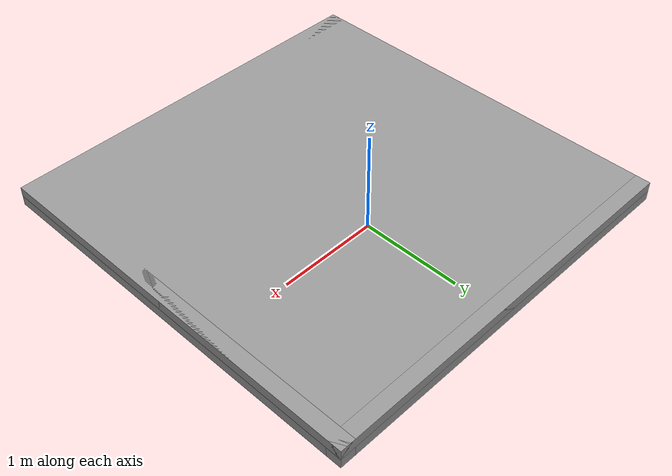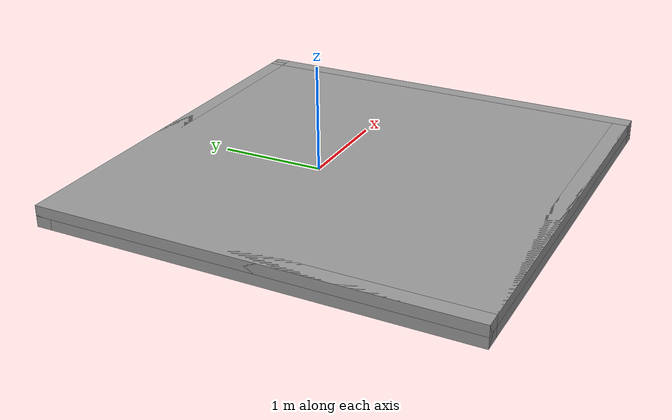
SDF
<?xml version='1.0'?>
<sdf version='1.6'>
  <model name='base01'>
    <pose frame=''>-0.035 -0.425 0 0 -0 0</pose>
    <link name='Floor_1'>
      <collision name='Floor_1_Collision'>
        <geometry>
          <box>
            <size>4 4 0.1</size>
          </box>
        </geometry>
        <pose frame=''>0 0 0.05 0 -0 0</pose>
      </collision>
      <visual name='Floor_1_Visual'>
        <pose frame=''>0 0 0.05 0 -0 0</pose>
        <geometry>
          <box>
            <size>4 4 0.1</size>
          </box>
        </geometry>
        <material>
          <script>
            <uri>file://media/materials/scripts/gazebo.material</uri>
            <name>Gazebo/Grey</name>
          </script>
          <ambient>1 1 1 1</ambient>
        </material>
      </visual>
      <pose frame=''>0 0 0.1 0 -0 0</pose>
    </link>
    <link name='Wall_10'>
      <collision name='Wall_10_Collision'>
        <geometry>
          <box>
            <size>4 0.15 0.1</size>
          </box>
        </geometry>
        <pose frame=''>0 0 0.05 0 -0 0</pose>
      </collision>
      <visual name='Wall_10_Visual'>
        <pose frame=''>0 0 0.05 0 -0 0</pose>
        <geometry>
          <box>
            <size>4 0.15 0.1</size>
          </box>
        </geometry>
        <material>
          <script>
            <uri>file://media/materials/scripts/gazebo.material</uri>
            <name>Gazebo/Grey</name>
          </script>
          <ambient>1 1 1 1</ambient>
        </material>
      </visual>
      <pose frame=''>-1.925 0 0 0 0 -1.5708</pose>
    </link>
    <link name='Wall_16'>
      <collision name='Wall_16_Collision'>
        <geometry>
          <box>
            <size>4 0.15 0.1</size>
          </box>
        </geometry>
        <pose frame=''>0 0 0.05 0 -0 0</pose>
      </collision>
      <visual name='Wall_16_Visual'>
        <pose frame=''>0 0 0.05 0 -0 0</pose>
        <geometry>
          <box>
            <size>4 0.15 0.1</size>
          </box>
        </geometry>
        <material>
          <script>
            <uri>file://media/materials/scripts/gazebo.material</uri>
            <name>Gazebo/Grey</name>
          </script>
          <ambient>1 1 1 1</ambient>
        </material>
      </visual>
      <pose frame=''>0 -1.925 0.1 0 -0 0</pose>
    </link>
    <link name='Wall_17'>
      <collision name='Wall_17_Collision'>
        <geometry>
          <box>
            <size>4 0.15 0.1</size>
          </box>
        </geometry>
        <pose frame=''>0 0 0.05 0 -0 0</pose>
      </collision>
      <visual name='Wall_17_Visual'>
        <pose frame=''>0 0 0.05 0 -0 0</pose>
        <geometry>
          <box>
            <size>4 0.15 0.1</size>
          </box>
        </geometry>
        <material>
          <script>
            <uri>file://media/materials/scripts/gazebo.material</uri>
            <name>Gazebo/Grey</name>
          </script>
          <ambient>1 1 1 1</ambient>
        </material>
      </visual>
      <pose frame=''>1.925 0 0.1 0 -0 1.5708</pose>
    </link>
    <link name='Wall_18'>
      <collision name='Wall_18_Collision'>
        <geometry>
          <box>
            <size>4 0.15 0.1</size>
          </box>
        </geometry>
        <pose frame=''>0 0 0.05 0 -0 0</pose>
      </collision>
      <visual name='Wall_18_Visual'>
        <pose frame=''>0 0 0.05 0 -0 0</pose>
        <geometry>
          <box>
            <size>4 0.15 0.1</size>
          </box>
        </geometry>
        <material>
          <script>
            <uri>file://media/materials/scripts/gazebo.material</uri>
            <name>Gazebo/Grey</name>
          </script>
          <ambient>1 1 1 1</ambient>
        </material>
      </visual>
      <pose frame=''>0 1.925 0.1 0 -0 3.14159</pose>
    </link>
    <link name='Wall_19'>
      <collision name='Wall_19_Collision'>
        <geometry>
          <box>
            <size>4 0.15 0.1</size>
          </box>
        </geometry>
        <pose frame=''>0 0 0.05 0 -0 0</pose>
      </collision>
      <visual name='Wall_19_Visual'>
        <pose frame=''>0 0 0.05 0 -0 0</pose>
        <geometry>
          <box>
            <size>4 0.15 0.1</size>
          </box>
        </geometry>
        <material>
          <script>
            <uri>file://media/materials/scripts/gazebo.material</uri>
            <name>Gazebo/Grey</name>
          </script>
          <ambient>1 1 1 1</ambient>
        </material>
      </visual>
      <pose frame=''>-1.925 0 0.1 0 0 -1.5708</pose>
    </link>
    <link name='Wall_6'>
      <collision name='Wall_6_Collision'>
        <geometry>
          <box>
            <size>4 0.15 0.1</size>
          </box>
        </geometry>
        <pose frame=''>0 0 0.05 0 -0 0</pose>
      </collision>
      <visual name='Wall_6_Visual'>
        <pose frame=''>0 0 0.05 0 -0 0</pose>
        <geometry>
          <box>
            <size>4 0.15 0.1</size>
          </box>
        </geometry>
        <material>
          <script>
            <uri>file://media/materials/scripts/gazebo.material</uri>
            <name>Gazebo/Grey</name>
          </script>
          <ambient>1 1 1 1</ambient>
        </material>
      </visual>
      <pose frame=''>0 -1.925 0 0 -0 0</pose>
    </link>
    <link name='Wall_7'>
      <collision name='Wall_7_Collision'>
        <geometry>
          <box>
            <size>4 0.15 0.1</size>
          </box>
        </geometry>
        <pose frame=''>0 0 0.05 0 -0 0</pose>
      </collision>
      <visual name='Wall_7_Visual'>
        <pose frame=''>0 0 0.05 0 -0 0</pose>
        <geometry>
          <box>
            <size>4 0.15 0.1</size>
          </box>
        </geometry>
        <material>
          <script>
            <uri>file://media/materials/scripts/gazebo.material</uri>
            <name>Gazebo/Grey</name>
          </script>
          <ambient>1 1 1 1</ambient>
        </material>
      </visual>
      <pose frame=''>1.925 0 0 0 -0 1.5708</pose>
    </link>
    <link name='Wall_8'>
      <collision name='Wall_8_Collision'>
        <geometry>
          <box>
            <size>4 0.15 0.1</size>
          </box>
        </geometry>
        <pose frame=''>0 0 0.05 0 -0 0</pose>
      </collision>
      <visual name='Wall_8_Visual'>
        <pose frame=''>0 0 0.05 0 -0 0</pose>
        <geometry>
          <box>
            <size>4 0.15 0.1</size>
          </box>
        </geometry>
        <material>
          <script>
            <uri>file://media/materials/scripts/gazebo.material</uri>
            <name>Gazebo/Grey</name>
          </script>
          <ambient>1 1 1 1</ambient>
        </material>
      </visual>
      <pose frame=''>0 1.925 0 0 -0 3.14159</pose>
    </link>
    <static>1</static>
  </model>
</sdf>
